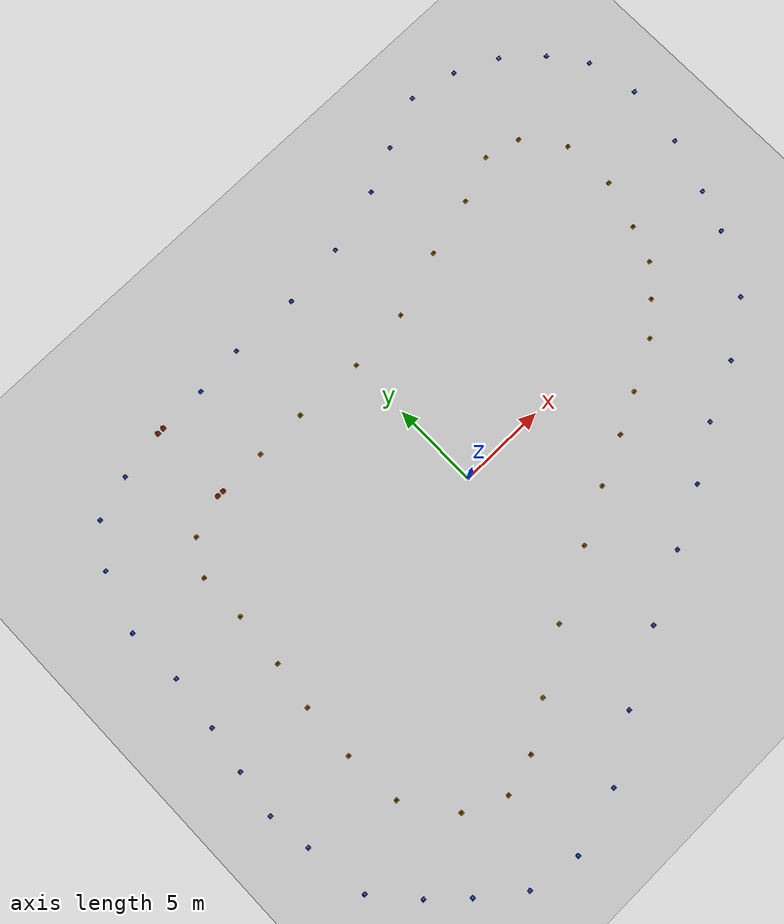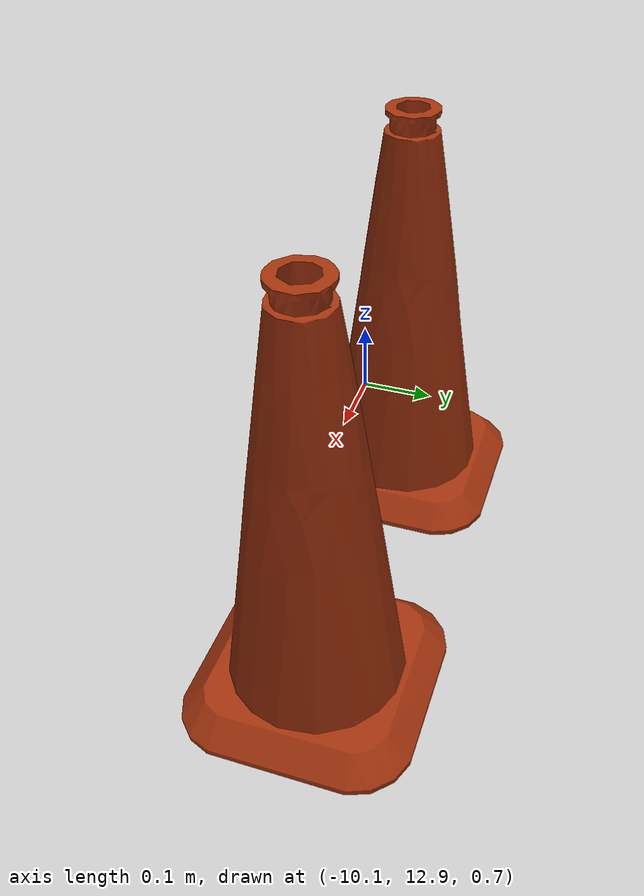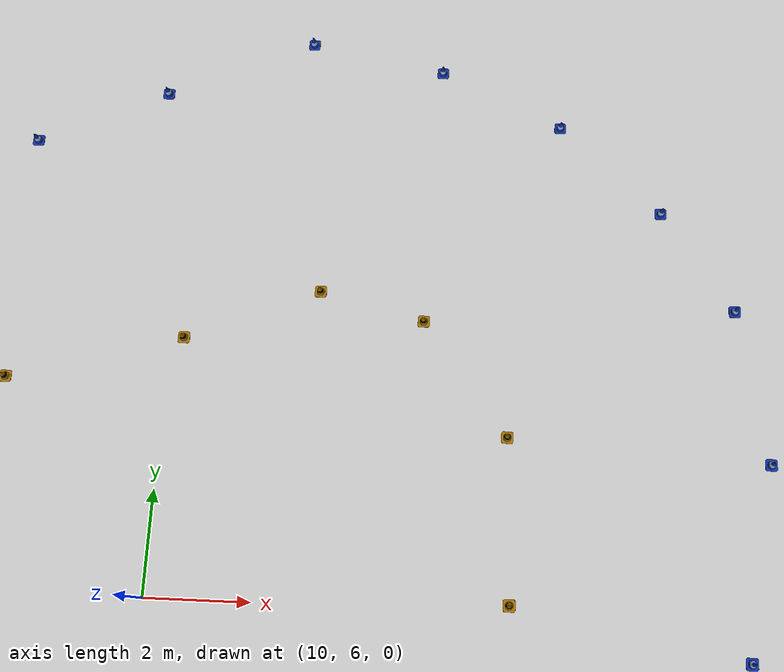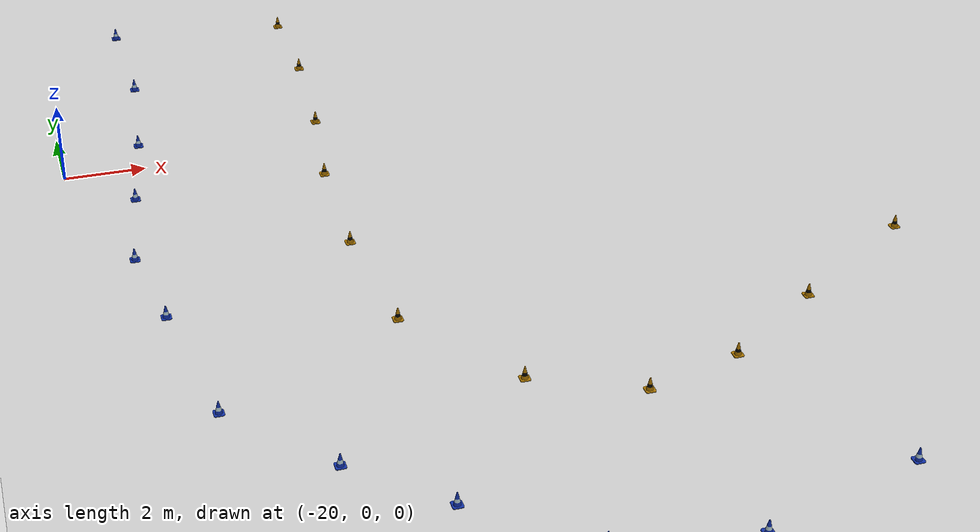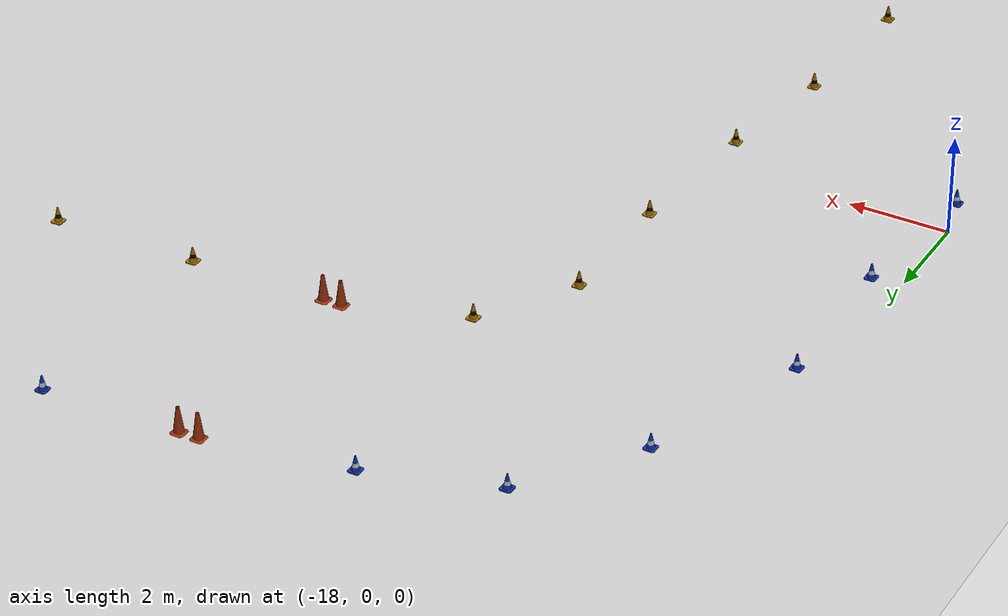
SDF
<sdf version='1.6'>
  <world name='LAST_LAUNCH'>
    <gui fullscreen='0'>
      <camera name='user_camera'>
        <pose frame=''>-40 40 20 0 0.667643 -1</pose>
        <view_controller>orbit</view_controller>
        <projection_type>perspective</projection_type>
      </camera>
    </gui>

    <!-- WORLD SETTINGS -->
    <scene>
      <ambient>1.0 1.0 1.0 1.0</ambient>
      <shadows>false</shadows>
    </scene>

    <spherical_coordinates>
      <heading_deg>180</heading_deg>

      <!-- Appleton Tower coordinates -->
      <latitude_deg>55.944400</latitude_deg>
      <longitude_deg>-3.18629</longitude_deg>
    </spherical_coordinates>

    <light name='sun' type='directional'>
      <cast_shadows>1</cast_shadows>
      <pose frame=''>0 0 10 0 -0 0</pose>
      <diffuse>0.8 0.8 0.8 1</diffuse>
      <specular>0.1 0.1 0.1 1</specular>
      <attenuation>
        <range>1000</range>
        <constant>0.9</constant>
        <linear>0.01</linear>
        <quadratic>0.001</quadratic>
      </attenuation>
      <direction>-0.5 0.5 -1</direction>
    </light>

    <!-- MODELS -->
    <include>
      <uri>model://ground_plane</uri>
      <pose>0.0 0.0 0.0 0 0 0</pose>
    </include>

    <include>
      <uri>model://LAST_LAUNCH</uri>
      <pose>0 0 0.5 0 0 0</pose>
    </include>

  </world>
</sdf>

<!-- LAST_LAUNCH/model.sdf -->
<sdf version='1.6'>
  <model name='track'>

       <include>
            <uri>model://models/blue_cone</uri>
            <pose>-16.7219 9.56934 0.15 0 0 0</pose>
            <name>blue_cone_0</name>

        </include>

       <include>
            <uri>model://models/blue_cone</uri>
            <pose>-12.7553 12.49 0.15 0 0 0</pose>
            <name>blue_cone_1</name>

        </include>

       <include>
            <uri>model://models/blue_cone</uri>
            <pose>-6.89062 13.0757 0.15 0 0 0</pose>
            <name>blue_cone_2</name>

        </include>

       <include>
            <uri>model://models/blue_cone</uri>
            <pose>9.62956 15.8379 0.15 0 0 0</pose>
            <name>blue_cone_3</name>

        </include>

       <include>
            <uri>model://models/blue_cone</uri>
            <pose>12.492 17.0404 0.15 0 0 0</pose>
            <name>blue_cone_4</name>

        </include>

       <include>
            <uri>model://models/blue_cone</uri>
            <pose>15.1389 16.5025 0.15 0 0 0</pose>
            <name>blue_cone_5</name>

        </include>

       <include>
            <uri>model://models/blue_cone</uri>
            <pose>19.5034 13.6361 0.15 0 0 0</pose>
            <name>blue_cone_6</name>

        </include>

       <include>
            <uri>model://models/blue_cone</uri>
            <pose>20.8922 11.7012 0.15 0 0 0</pose>
            <name>blue_cone_7</name>

        </include>

       <include>
            <uri>model://models/blue_cone</uri>
            <pose>17.5221 15.3812 0.15 0 0 0</pose>
            <name>blue_cone_8</name>

        </include>

       <include>
            <uri>model://models/blue_cone</uri>
            <pose>21.4761 8.79574 0.15 0 0 0</pose>
            <name>blue_cone_9</name>

        </include>

       <include>
            <uri>model://models/blue_cone</uri>
            <pose>20.9992 5.27662 0.15 0 0 0</pose>
            <name>blue_cone_10</name>

        </include>

       <include>
            <uri>model://models/blue_cone</uri>
            <pose>19.9925 2.24053 0.15 0 0 0</pose>
            <name>blue_cone_11</name>

        </include>

       <include>
            <uri>model://models/blue_cone</uri>
            <pose>19.0983 0.0 0.15 0 0 0</pose>
            <name>blue_cone_12</name>

        </include>

       <include>
            <uri>model://models/blue_cone</uri>
            <pose>17.1824 -3.23994 0.15 0 0 0</pose>
            <name>blue_cone_13</name>

        </include>

       <include>
            <uri>model://models/blue_cone</uri>
            <pose>11.114 -6.74408 0.15 0 0 0</pose>
            <name>blue_cone_14</name>

        </include>

       <include>
            <uri>model://models/blue_cone</uri>
            <pose>-4.06552 13.3637 0.15 0 0 0</pose>
            <name>blue_cone_15</name>

        </include>

       <include>
            <uri>model://models/blue_cone</uri>
            <pose>14.2831 -5.26437 0.15 0 0 0</pose>
            <name>blue_cone_16</name>

        </include>

       <include>
            <uri>model://models/blue_cone</uri>
            <pose>8.25363 -8.53889 0.15 0 0 0</pose>
            <name>blue_cone_17</name>

        </include>

       <include>
            <uri>model://models/blue_cone</uri>
            <pose>5.06185 -10.1551 0.15 0 0 0</pose>
            <name>blue_cone_18</name>

        </include>

       <include>
            <uri>model://models/blue_cone</uri>
            <pose>1.42086 -11.9634 0.15 0 0 0</pose>
            <name>blue_cone_19</name>

        </include>

       <include>
            <uri>model://models/blue_cone</uri>
            <pose>-2.4975 -14.0305 0.15 0 0 0</pose>
            <name>blue_cone_20</name>

        </include>

       <include>
            <uri>model://models/blue_cone</uri>
            <pose>-5.74864 -16.1217 0.15 0 0 0</pose>
            <name>blue_cone_21</name>

        </include>

       <include>
            <uri>model://models/blue_cone</uri>
            <pose>-9.34841 -17.1551 0.15 0 0 0</pose>
            <name>blue_cone_22</name>

        </include>

       <include>
            <uri>model://models/blue_cone</uri>
            <pose>-12.2114 -16.6459 0.15 0 0 0</pose>
            <name>blue_cone_23</name>

        </include>

       <include>
            <uri>model://models/blue_cone</uri>
            <pose>-14.4625 -14.9249 0.15 0 0 0</pose>
            <name>blue_cone_24</name>

        </include>

       <include>
            <uri>model://models/blue_cone</uri>
            <pose>-16.2427 -13.276 0.15 0 0 0</pose>
            <name>blue_cone_25</name>

        </include>

       <include>
            <uri>model://models/blue_cone</uri>
            <pose>-0.131239 13.3125 0.15 0 0 0</pose>
            <name>blue_cone_26</name>

        </include>

       <include>
            <uri>model://models/blue_cone</uri>
            <pose>-18.1431 -11.086 0.15 0 0 0</pose>
            <name>blue_cone_27</name>

        </include>

       <include>
            <uri>model://models/blue_cone</uri>
            <pose>-18.6174 -7.56085 0.15 0 0 0</pose>
            <name>blue_cone_28</name>

        </include>

       <include>
            <uri>model://models/blue_cone</uri>
            <pose>-18.9382 -5.15509 0.15 0 0 0</pose>
            <name>blue_cone_29</name>

        </include>

       <include>
            <uri>model://models/blue_cone</uri>
            <pose>-18.5558 -2.56017 0.15 0 0 0</pose>
            <name>blue_cone_30</name>

        </include>

       <include>
            <uri>model://models/blue_cone</uri>
            <pose>-18.1206 0.0 0.15 0 0 0</pose>
            <name>blue_cone_31</name>

        </include>

       <include>
            <uri>model://models/blue_cone</uri>
            <pose>-17.7841 3.04246 0.15 0 0 0</pose>
            <name>blue_cone_32</name>

        </include>

       <include>
            <uri>model://models/blue_cone</uri>
            <pose>-17.8432 6.27091 0.15 0 0 0</pose>
            <name>blue_cone_33</name>

        </include>

       <include>
            <uri>model://models/blue_cone</uri>
            <pose>-15.1864 11.7137 0.15 0 0 0</pose>
            <name>blue_cone_34</name>

        </include>

       <include>
            <uri>model://models/blue_cone</uri>
            <pose>3.50416 13.7245 0.15 0 0 0</pose>
            <name>blue_cone_35</name>

        </include>

       <include>
            <uri>model://models/blue_cone</uri>
            <pose>7.13676 14.727 0.15 0 0 0</pose>
            <name>blue_cone_36</name>

        </include>

       <include>
            <uri>model://models/yellow_cone</uri>
            <pose>-12.2184 7.60803 0.15 0 0 0</pose>
            <name>yellow_cone_37</name>

        </include>

       <include>
            <uri>model://models/yellow_cone</uri>
            <pose>7.14787 9.92656 0.15 0 0 0</pose>
            <name>yellow_cone_38</name>

        </include>

       <include>
            <uri>model://models/yellow_cone</uri>
            <pose>10.4312 10.799 0.15 0 0 0</pose>
            <name>yellow_cone_39</name>

        </include>

       <include>
            <uri>model://models/yellow_cone</uri>
            <pose>12.9655 11.8014 0.15 0 0 0</pose>
            <name>yellow_cone_40</name>

        </include>

       <include>
            <uri>model://models/yellow_cone</uri>
            <pose>14.9652 11.2833 0.15 0 0 0</pose>
            <name>yellow_cone_41</name>

        </include>

       <include>
            <uri>model://models/yellow_cone</uri>
            <pose>16.6054 9.12035 0.15 0 0 0</pose>
            <name>yellow_cone_42</name>

        </include>

       <include>
            <uri>model://models/yellow_cone</uri>
            <pose>-6.90998 8.44454 0.15 0 0 0</pose>
            <name>yellow_cone_43</name>

        </include>

       <include>
            <uri>model://models/yellow_cone</uri>
            <pose>16.7063 6.10772 0.15 0 0 0</pose>
            <name>yellow_cone_44</name>

        </include>

       <include>
            <uri>model://models/yellow_cone</uri>
            <pose>15.876 3.47906 0.15 0 0 0</pose>
            <name>yellow_cone_45</name>

        </include>

       <include>
            <uri>model://models/yellow_cone</uri>
            <pose>15.106 1.5027 0.15 0 0 0</pose>
            <name>yellow_cone_46</name>

        </include>

       <include>
            <uri>model://models/yellow_cone</uri>
            <pose>13.6765 0.0 0.15 0 0 0</pose>
            <name>yellow_cone_47</name>

        </include>

       <include>
            <uri>model://models/yellow_cone</uri>
            <pose>9.41953 -2.84739 0.15 0 0 0</pose>
            <name>yellow_cone_48</name>

        </include>

       <include>
            <uri>model://models/yellow_cone</uri>
            <pose>12.0732 -1.43122 0.15 0 0 0</pose>
            <name>yellow_cone_49</name>

        </include>

       <include>
            <uri>model://models/yellow_cone</uri>
            <pose>7.26282 -3.9408 0.15 0 0 0</pose>
            <name>yellow_cone_50</name>

        </include>

       <include>
            <uri>model://models/yellow_cone</uri>
            <pose>4.65159 -5.15509 0.15 0 0 0</pose>
            <name>yellow_cone_51</name>

        </include>

       <include>
            <uri>model://models/yellow_cone</uri>
            <pose>1.78774 -6.66723 0.15 0 0 0</pose>
            <name>yellow_cone_52</name>

        </include>

       <include>
            <uri>model://models/yellow_cone</uri>
            <pose>-1.97969 -8.56329 0.15 0 0 0</pose>
            <name>yellow_cone_53</name>

        </include>

       <include>
            <uri>model://models/yellow_cone</uri>
            <pose>-4.01695 8.50322 0.15 0 0 0</pose>
            <name>yellow_cone_54</name>

        </include>

       <include>
            <uri>model://models/yellow_cone</uri>
            <pose>-5.18123 -10.5555 0.15 0 0 0</pose>
            <name>yellow_cone_55</name>

        </include>

       <include>
            <uri>model://models/yellow_cone</uri>
            <pose>-7.57043 -12.1125 0.15 0 0 0</pose>
            <name>yellow_cone_56</name>

        </include>

       <include>
            <uri>model://models/yellow_cone</uri>
            <pose>-9.76388 -12.7081 0.15 0 0 0</pose>
            <name>yellow_cone_57</name>

        </include>

       <include>
            <uri>model://models/yellow_cone</uri>
            <pose>-12.0338 -11.6718 0.15 0 0 0</pose>
            <name>yellow_cone_58</name>

        </include>

       <include>
            <uri>model://models/yellow_cone</uri>
            <pose>-13.9298 -8.98291 0.15 0 0 0</pose>
            <name>yellow_cone_59</name>

        </include>

       <include>
            <uri>model://models/yellow_cone</uri>
            <pose>-14.1575 -5.77329 0.15 0 0 0</pose>
            <name>yellow_cone_60</name>

        </include>

       <include>
            <uri>model://models/yellow_cone</uri>
            <pose>-14.0043 -2.62998 0.15 0 0 0</pose>
            <name>yellow_cone_61</name>

        </include>

       <include>
            <uri>model://models/yellow_cone</uri>
            <pose>-13.6087 0.0 0.15 0 0 0</pose>
            <name>yellow_cone_62</name>

        </include>

       <include>
            <uri>model://models/yellow_cone</uri>
            <pose>-13.3478 3.05712 0.15 0 0 0</pose>
            <name>yellow_cone_63</name>

        </include>

       <include>
            <uri>model://models/yellow_cone</uri>
            <pose>-0.059759 8.37591 0.15 0 0 0</pose>
            <name>yellow_cone_64</name>

        </include>

       <include>
            <uri>model://models/yellow_cone</uri>
            <pose>-13.3455 5.78808 0.15 0 0 0</pose>
            <name>yellow_cone_65</name>

        </include>

       <include>
            <uri>model://models/yellow_cone</uri>
            <pose>3.5151 8.6968 0.15 0 0 0</pose>
            <name>yellow_cone_66</name>

        </include>

       <include>
            <uri>model://models/big_cone</uri>
            <pose>-9.61314 13.0 0.15 0 0 0</pose>
            <name>big_cone_67</name>

        </include>

       <include>
            <uri>model://models/big_cone</uri>
            <pose>-9.99934 12.989 0.15 0 0 0</pose>
            <name>big_cone_68</name>

        </include>

       <include>
            <uri>model://models/big_cone</uri>
            <pose>-9.62148 8.39323 0.15 0 0 0</pose>
            <name>big_cone_69</name>

        </include>

       <include>
            <uri>model://models/big_cone</uri>
            <pose>-9.98667 8.39348 0.15 0 0 0</pose>
            <name>big_cone_70</name>

        </include>

    <static>0</static>
    <allow_auto_disable>1</allow_auto_disable>
  </model>
</sdf>

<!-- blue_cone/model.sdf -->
<sdf version='1.6'>
  <model name='blue_cone'>
    <link name='link'>
      <pose frame=''>0 0 0 0 0 0</pose>
      <inertial>
        <inertia>
          <ixx>0.0016</ixx>
          <ixy>0</ixy>
          <ixz>0</ixz>
          <iyy>0.0016</iyy>
          <iyz>0</iyz>
          <izz>0.0010</izz>
        </inertia>
        <mass>0.45</mass>
      </inertial>
      <visual name='visual'>
        <geometry>
          <mesh>
            <uri>package://eufs_description/meshes/cone_blue.dae</uri>
          </mesh>
        </geometry>
        <cast_shadows>1</cast_shadows>
      </visual>
      <collision name='collision'>
        <max_contacts>3</max_contacts>
        <geometry>
          <mesh>
            <uri>package://eufs_description/meshes/cone_blue.dae</uri>
          </mesh>
        </geometry>
      </collision>
    </link>
  </model>
</sdf>

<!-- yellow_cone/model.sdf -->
<sdf version='1.6'>
  <model name='yellow_cone'>
    <link name='link'>
      <pose frame=''>0 0 0 0 0 0</pose>
      <inertial>
        <inertia>
          <ixx>0.0016</ixx>
          <ixy>0</ixy>
          <ixz>0</ixz>
          <iyy>0.0016</iyy>
          <iyz>0</iyz>
          <izz>0.0010</izz>
        </inertia>
        <mass>0.45</mass>
      </inertial>
      <visual name='visual'>
        <geometry>
          <mesh>
            <uri>package://eufs_description/meshes/cone_yellow.dae</uri>
          </mesh>
        </geometry>
        <cast_shadows>1</cast_shadows>
      </visual>
      <collision name='collision'>
        <max_contacts>3</max_contacts>
        <geometry>
          <mesh>
            <uri>package://eufs_description/meshes/cone_yellow.dae</uri>
          </mesh>
        </geometry>
      </collision>
    </link>
  </model>
</sdf>

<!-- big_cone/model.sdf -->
<sdf version='1.6'>
  <model name='big_cone'>
    <link name='link'>
      <pose frame=''>0 0 0 0 0 0</pose>
      <inertial>
        <inertia>
          <ixx>0.0016</ixx>
          <ixy>0</ixy>
          <ixz>0</ixz>
          <iyy>0.0016</iyy>
          <iyz>0</iyz>
          <izz>0.0010</izz>
        </inertia>
        <mass>0.45</mass>
      </inertial>
      <visual name='visual'>
        <geometry>
          <mesh>
            <uri>package://eufs_description/meshes/cone_big.dae</uri>
          </mesh>
        </geometry>
        <cast_shadows>1</cast_shadows>
      </visual>
      <collision name='collision'>
        <max_contacts>3</max_contacts>
        <geometry>
          <mesh>
            <uri>package://eufs_description/meshes/cone_big.dae</uri>
          </mesh>
        </geometry>
      </collision>
    </link>
  </model>
</sdf>
